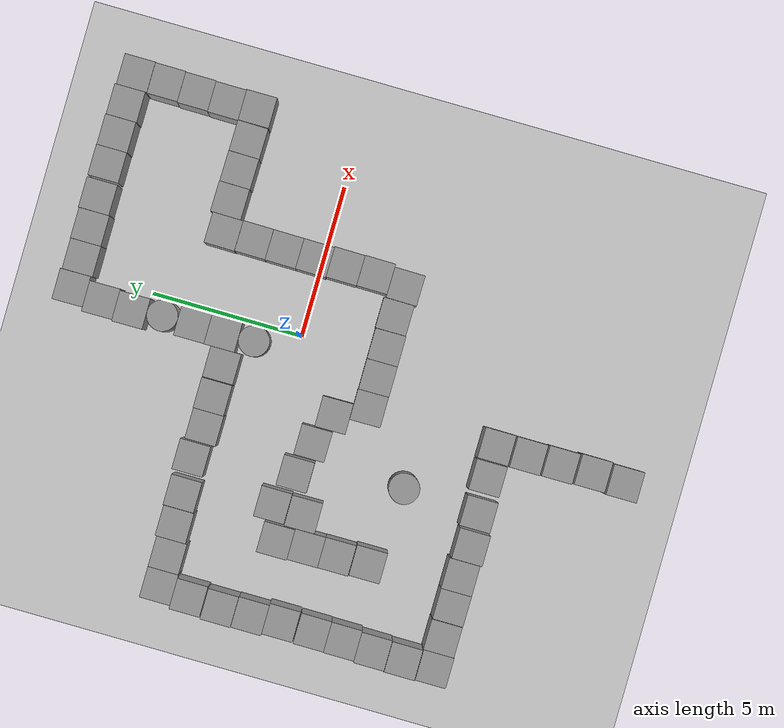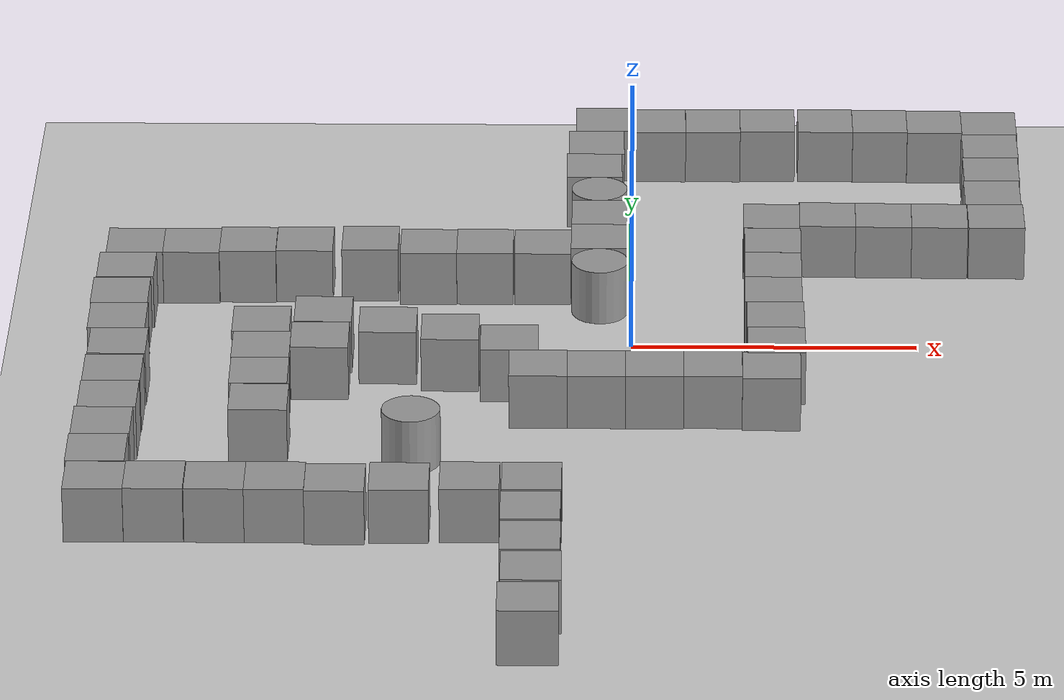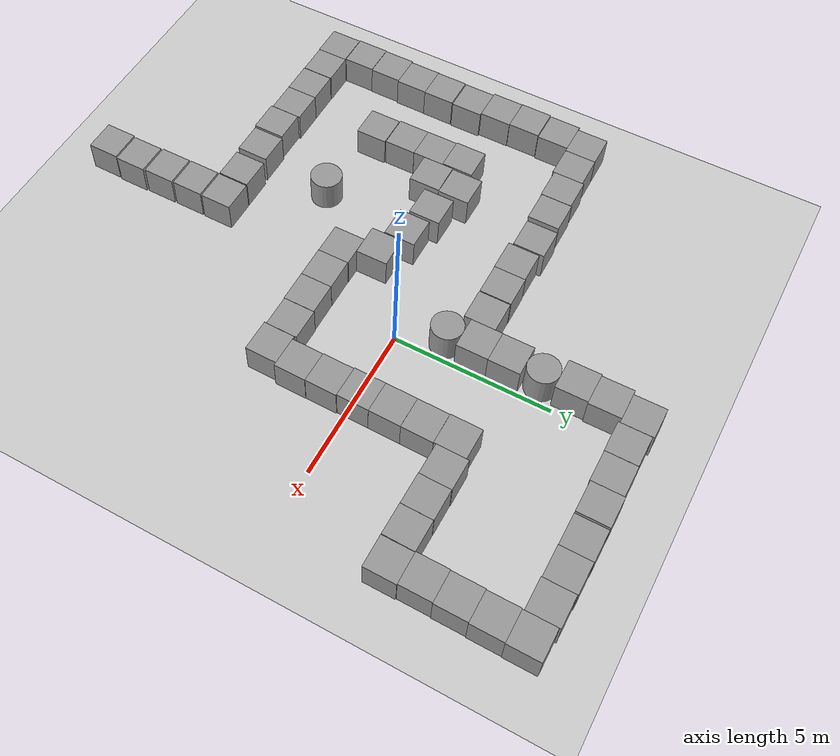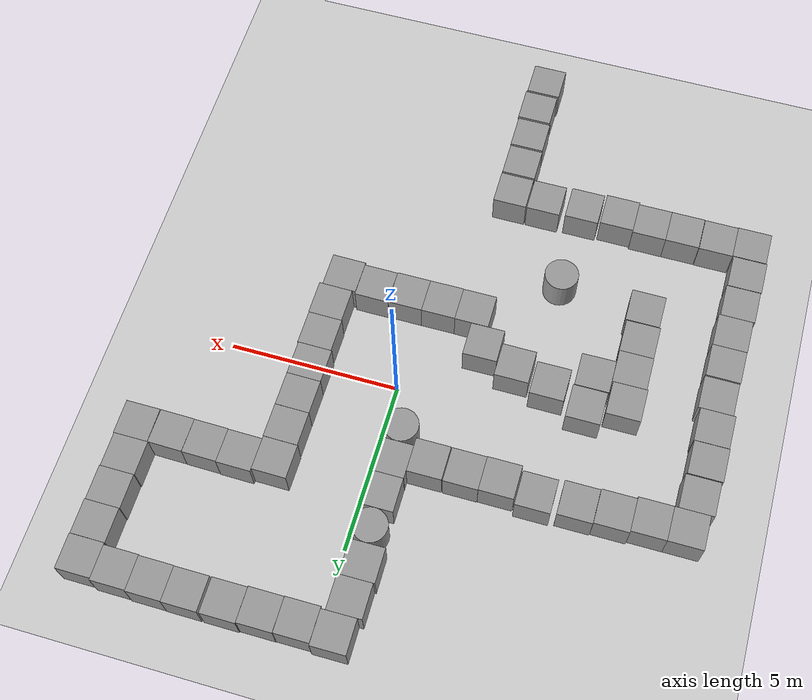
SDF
<sdf version="1.7">
 <world name="default">
  <light name="sun" type="directional">
   <pose>0 0 10 0 -0 0</pose>
   <diffuse>0.8 0.8 0.8 1</diffuse>
   <specular>0.2 0.2 0.2 1</specular>
   <attenuation>
    <range>1000</range>
    <constant>0.9</constant>
    <linear>0.01</linear>
    <quadratic>0.001</quadratic>
   </attenuation>
   <direction>-0.5 0.1 -0.9</direction>
   <spot><inner_angle>0</inner_angle><outer_angle>0</outer_angle><falloff>0</falloff></spot>
  </light>
  <model name="ground_plane">
   <static>1</static>
   <link name="link">
    <collision name="collision">
     <geometry><plane><normal>0 0 1</normal><size>100 100</size></plane></geometry>
     <surface>
      <contact><collide_bitmask>65535</collide_bitmask></contact>
      <friction><ode><mu>100</mu><mu2>50</mu2></ode></friction>
     </surface>
    </collision>
    <visual name="visual">
     <cast_shadows>0</cast_shadows>
     <geometry><plane><normal>0 0 1</normal><size>100 100</size></plane></geometry>
     <material>
      <script><uri>file://media/materials/scripts/gazebo.material</uri><name>Gazebo/Grey</name></script>
     </material>
    </visual>
   </link>
  </model>
  <gravity>0 0 -9.8</gravity>
  <magnetic_field>6e-06 2.3e-05 -4.2e-05</magnetic_field>
  <atmosphere type="adiabatic"/>
  <physics type="ode">
   <max_step_size>0.001</max_step_size>
   <real_time_factor>1</real_time_factor>
   <real_time_update_rate>1000</real_time_update_rate>
  </physics>
  <scene><ambient>0.4 0.4 0.4 1</ambient><background>0.7 0.7 0.7 1</background><shadows>1</shadows></scene>
  <spherical_coordinates>
   <surface_model>EARTH_WGS84</surface_model>
   <latitude_deg>0</latitude_deg>
   <longitude_deg>0</longitude_deg>
   <elevation>0</elevation>
   <heading_deg>0</heading_deg>
  </spherical_coordinates>
  <model name="unit_cylinder">
   <pose>-0.563126 1.39551 0.499997 -3e-06 -1e-06 -3.8e-05</pose>
   <link name="link">
    <inertial>
     <mass>1</mass>
     <inertia><ixx>0.145833</ixx><ixy>0</ixy><ixz>0</ixz><iyy>0.145833</iyy><iyz>0</iyz><izz>0.125</izz></inertia>
    </inertial>
    <collision name="collision">
     <geometry><cylinder><radius>0.5</radius><length>1</length></cylinder></geometry>
    </collision>
    <visual name="visual">
     <geometry><cylinder><radius>0.5</radius><length>1</length></cylinder></geometry>
     <material>
      <script><name>Gazebo/Grey</name><uri>file://media/materials/scripts/gazebo.material</uri></script>
     </material>
    </visual>
   </link>
  </model>
  <model name="unit_box">
   <pose>-2.11057 -1.67598 0.499995 1e-05 -0 0.009478</pose>
   <link name="link">
    <inertial>
     <mass>1</mass>
     <inertia>
      <ixx>0.166667</ixx>
      <ixy>0</ixy>
      <ixz>0</ixz>
      <iyy>0.166667</iyy>
      <iyz>0</iyz>
      <izz>0.166667</izz>
     </inertia>
    </inertial>
    <collision name="collision"><geometry><box><size>1 1 1</size></box></geometry></collision>
    <visual name="visual">
     <geometry><box><size>1 1 1</size></box></geometry>
     <material>
      <script><name>Gazebo/Grey</name><uri>file://media/materials/scripts/gazebo.material</uri></script>
     </material>
    </visual>
   </link>
  </model>
  <model name="unit_box_0">
   <pose>-1.60254 -2.67828 0.5 0 -0 0.004243</pose>
   <link name="link">
    <inertial>
     <mass>1</mass>
     <inertia>
      <ixx>0.166667</ixx>
      <ixy>0</ixy>
      <ixz>0</ixz>
      <iyy>0.166667</iyy>
      <iyz>0</iyz>
      <izz>0.166667</izz>
     </inertia>
    </inertial>
    <collision name="collision"><geometry><box><size>1 1 1</size></box></geometry></collision>
    <visual name="visual">
     <geometry><box><size>1 1 1</size></box></geometry>
     <material>
      <script><name>Gazebo/Grey</name><uri>file://media/materials/scripts/gazebo.material</uri></script>
     </material>
    </visual>
   </link>
  </model>
  <model name="unit_box_1">
   <pose>-0.602504 -2.68172 0.5 0 -0 0.004238</pose>
   <link name="link">
    <inertial>
     <mass>1</mass>
     <inertia>
      <ixx>0.166667</ixx>
      <ixy>0</ixy>
      <ixz>0</ixz>
      <iyy>0.166667</iyy>
      <iyz>0</iyz>
      <izz>0.166667</izz>
     </inertia>
    </inertial>
    <collision name="collision"><geometry><box><size>1 1 1</size></box></geometry></collision>
    <visual name="visual">
     <geometry><box><size>1 1 1</size></box></geometry>
     <material>
      <script><name>Gazebo/Grey</name><uri>file://media/materials/scripts/gazebo.material</uri></script>
     </material>
    </visual>
   </link>
  </model>
  <model name="unit_box_2">
   <pose>0.397892 -2.67889 0.499995 0 1e-05 0.003464</pose>
   <link name="link">
    <inertial>
     <mass>1</mass>
     <inertia>
      <ixx>0.166667</ixx>
      <ixy>0</ixy>
      <ixz>0</ixz>
      <iyy>0.166667</iyy>
      <iyz>0</iyz>
      <izz>0.166667</izz>
     </inertia>
    </inertial>
    <collision name="collision"><geometry><box><size>1 1 1</size></box></geometry></collision>
    <visual name="visual">
     <geometry><box><size>1 1 1</size></box></geometry>
     <material>
      <script><name>Gazebo/Grey</name><uri>file://media/materials/scripts/gazebo.material</uri></script>
     </material>
    </visual>
   </link>
  </model>
  <model name="unit_box_3">
   <pose>1.40093 -2.66196 0.499995 0 -1e-05 -0.002749</pose>
   <link name="link">
    <inertial>
     <mass>1</mass>
     <inertia>
      <ixx>0.166667</ixx>
      <ixy>0</ixy>
      <ixz>0</ixz>
      <iyy>0.166667</iyy>
      <iyz>0</iyz>
      <izz>0.166667</izz>
     </inertia>
    </inertial>
    <collision name="collision"><geometry><box><size>1 1 1</size></box></geometry></collision>
    <visual name="visual">
     <geometry><box><size>1 1 1</size></box></geometry>
     <material>
      <script><name>Gazebo/Grey</name><uri>file://media/materials/scripts/gazebo.material</uri></script>
     </material>
    </visual>
   </link>
  </model>
  <model name="unit_box_4">
   <pose>2.4034 -2.73301 0.499995 0 1e-05 -0.008846</pose>
   <link name="link">
    <inertial>
     <mass>1</mass>
     <inertia>
      <ixx>0.166667</ixx>
      <ixy>0</ixy>
      <ixz>0</ixz>
      <iyy>0.166667</iyy>
      <iyz>0</iyz>
      <izz>0.166667</izz>
     </inertia>
    </inertial>
    <collision name="collision"><geometry><box><size>1 1 1</size></box></geometry></collision>
    <visual name="visual">
     <geometry><box><size>1 1 1</size></box></geometry>
     <material>
      <script><name>Gazebo/Grey</name><uri>file://media/materials/scripts/gazebo.material</uri></script>
     </material>
    </visual>
   </link>
  </model>
  <model name="unit_box_5">
   <pose>2.50521 -1.73375 0.499995 -0 -1e-05 -0.009107</pose>
   <link name="link">
    <inertial>
     <mass>1</mass>
     <inertia>
      <ixx>0.166667</ixx>
      <ixy>0</ixy>
      <ixz>0</ixz>
      <iyy>0.166667</iyy>
      <iyz>0</iyz>
      <izz>0.166667</izz>
     </inertia>
    </inertial>
    <collision name="collision"><geometry><box><size>1 1 1</size></box></geometry></collision>
    <visual name="visual">
     <geometry><box><size>1 1 1</size></box></geometry>
     <material>
      <script><name>Gazebo/Grey</name><uri>file://media/materials/scripts/gazebo.material</uri></script>
     </material>
    </visual>
   </link>
  </model>
  <model name="unit_box_6">
   <pose>2.5019 -0.733593 0.499995 0 -1e-05 -0.009253</pose>
   <link name="link">
    <inertial>
     <mass>1</mass>
     <inertia>
      <ixx>0.166667</ixx>
      <ixy>0</ixy>
      <ixz>0</ixz>
      <iyy>0.166667</iyy>
      <iyz>0</iyz>
      <izz>0.166667</izz>
     </inertia>
    </inertial>
    <collision name="collision"><geometry><box><size>1 1 1</size></box></geometry></collision>
    <visual name="visual">
     <geometry><box><size>1 1 1</size></box></geometry>
     <material>
      <script><name>Gazebo/Grey</name><uri>file://media/materials/scripts/gazebo.material</uri></script>
     </material>
    </visual>
   </link>
  </model>
  <model name="unit_box_7">
   <pose>2.4839 0.266633 0.499995 1e-05 0 -0.009255</pose>
   <link name="link">
    <inertial>
     <mass>1</mass>
     <inertia>
      <ixx>0.166667</ixx>
      <ixy>0</ixy>
      <ixz>0</ixz>
      <iyy>0.166667</iyy>
      <iyz>0</iyz>
      <izz>0.166667</izz>
     </inertia>
    </inertial>
    <collision name="collision"><geometry><box><size>1 1 1</size></box></geometry></collision>
    <visual name="visual">
     <geometry><box><size>1 1 1</size></box></geometry>
     <material>
      <script><name>Gazebo/Grey</name><uri>file://media/materials/scripts/gazebo.material</uri></script>
     </material>
    </visual>
   </link>
  </model>
  <model name="unit_box_8">
   <pose>2.4918 1.26661 0.499995 1e-05 -0 -0.009264</pose>
   <link name="link">
    <inertial>
     <mass>1</mass>
     <inertia>
      <ixx>0.166667</ixx>
      <ixy>0</ixy>
      <ixz>0</ixz>
      <iyy>0.166667</iyy>
      <iyz>0</iyz>
      <izz>0.166667</izz>
     </inertia>
    </inertial>
    <collision name="collision"><geometry><box><size>1 1 1</size></box></geometry></collision>
    <visual name="visual">
     <geometry><box><size>1 1 1</size></box></geometry>
     <material>
      <script><name>Gazebo/Grey</name><uri>file://media/materials/scripts/gazebo.material</uri></script>
     </material>
    </visual>
   </link>
  </model>
  <model name="unit_box_9">
   <pose>2.50124 2.26709 0.499995 -1e-05 -0 -0.008381</pose>
   <link name="link">
    <inertial>
     <mass>1</mass>
     <inertia>
      <ixx>0.166667</ixx>
      <ixy>0</ixy>
      <ixz>0</ixz>
      <iyy>0.166667</iyy>
      <iyz>0</iyz>
      <izz>0.166667</izz>
     </inertia>
    </inertial>
    <collision name="collision"><geometry><box><size>1 1 1</size></box></geometry></collision>
    <visual name="visual">
     <geometry><box><size>1 1 1</size></box></geometry>
     <material>
      <script><name>Gazebo/Grey</name><uri>file://media/materials/scripts/gazebo.material</uri></script>
     </material>
    </visual>
   </link>
  </model>
  <model name="unit_box_10">
   <pose>2.49575 3.26828 0.499995 0 -1e-05 -0.010132</pose>
   <link name="link">
    <inertial>
     <mass>1</mass>
     <inertia>
      <ixx>0.166667</ixx>
      <ixy>0</ixy>
      <ixz>0</ixz>
      <iyy>0.166667</iyy>
      <iyz>0</iyz>
      <izz>0.166667</izz>
     </inertia>
    </inertial>
    <collision name="collision"><geometry><box><size>1 1 1</size></box></geometry></collision>
    <visual name="visual">
     <geometry><box><size>1 1 1</size></box></geometry>
     <material>
      <script><name>Gazebo/Grey</name><uri>file://media/materials/scripts/gazebo.material</uri></script>
     </material>
    </visual>
   </link>
  </model>
  <model name="unit_box_11">
   <pose>3.49656 3.34273 0.499995 0 -1e-05 -0.010141</pose>
   <link name="link">
    <inertial>
     <mass>1</mass>
     <inertia>
      <ixx>0.166667</ixx>
      <ixy>0</ixy>
      <ixz>0</ixz>
      <iyy>0.166667</iyy>
      <iyz>0</iyz>
      <izz>0.166667</izz>
     </inertia>
    </inertial>
    <collision name="collision"><geometry><box><size>1 1 1</size></box></geometry></collision>
    <visual name="visual">
     <geometry><box><size>1 1 1</size></box></geometry>
     <material>
      <script><name>Gazebo/Grey</name><uri>file://media/materials/scripts/gazebo.material</uri></script>
     </material>
    </visual>
   </link>
  </model>
  <model name="unit_box_12">
   <pose>4.49676 3.32169 0.499995 0 1e-05 -0.010857</pose>
   <link name="link">
    <inertial>
     <mass>1</mass>
     <inertia>
      <ixx>0.166667</ixx>
      <ixy>0</ixy>
      <ixz>0</ixz>
      <iyy>0.166667</iyy>
      <iyz>0</iyz>
      <izz>0.166667</izz>
     </inertia>
    </inertial>
    <collision name="collision"><geometry><box><size>1 1 1</size></box></geometry></collision>
    <visual name="visual">
     <geometry><box><size>1 1 1</size></box></geometry>
     <material>
      <script><name>Gazebo/Grey</name><uri>file://media/materials/scripts/gazebo.material</uri></script>
     </material>
    </visual>
   </link>
  </model>
  <model name="unit_box_13">
   <pose>5.49803 3.30494 0.499995 0 1e-05 -0.01365</pose>
   <link name="link">
    <inertial>
     <mass>1</mass>
     <inertia>
      <ixx>0.166667</ixx>
      <ixy>0</ixy>
      <ixz>0</ixz>
      <iyy>0.166667</iyy>
      <iyz>0</iyz>
      <izz>0.166667</izz>
     </inertia>
    </inertial>
    <collision name="collision"><geometry><box><size>1 1 1</size></box></geometry></collision>
    <visual name="visual">
     <geometry><box><size>1 1 1</size></box></geometry>
     <material>
      <script><name>Gazebo/Grey</name><uri>file://media/materials/scripts/gazebo.material</uri></script>
     </material>
    </visual>
   </link>
  </model>
  <model name="unit_box_14">
   <pose>6.50891 3.29743 0.499995 -1e-05 0 -0.001728</pose>
   <link name="link">
    <inertial>
     <mass>1</mass>
     <inertia>
      <ixx>0.166667</ixx>
      <ixy>0</ixy>
      <ixz>0</ixz>
      <iyy>0.166667</iyy>
      <iyz>0</iyz>
      <izz>0.166667</izz>
     </inertia>
    </inertial>
    <collision name="collision"><geometry><box><size>1 1 1</size></box></geometry></collision>
    <visual name="visual">
     <geometry><box><size>1 1 1</size></box></geometry>
     <material>
      <script><name>Gazebo/Grey</name><uri>file://media/materials/scripts/gazebo.material</uri></script>
     </material>
    </visual>
   </link>
  </model>
  <model name="unit_box_15">
   <pose>6.48522 4.29749 0.499995 0 -1e-05 -0.001712</pose>
   <link name="link">
    <inertial>
     <mass>1</mass>
     <inertia>
      <ixx>0.166667</ixx>
      <ixy>0</ixy>
      <ixz>0</ixz>
      <iyy>0.166667</iyy>
      <iyz>0</iyz>
      <izz>0.166667</izz>
     </inertia>
    </inertial>
    <collision name="collision"><geometry><box><size>1 1 1</size></box></geometry></collision>
    <visual name="visual">
     <geometry><box><size>1 1 1</size></box></geometry>
     <material>
      <script><name>Gazebo/Grey</name><uri>file://media/materials/scripts/gazebo.material</uri></script>
     </material>
    </visual>
   </link>
  </model>
  <model name="unit_box_16">
   <pose>6.50503 5.29749 0.499995 -0 1e-05 -0.001701</pose>
   <link name="link">
    <inertial>
     <mass>1</mass>
     <inertia>
      <ixx>0.166667</ixx>
      <ixy>0</ixy>
      <ixz>0</ixz>
      <iyy>0.166667</iyy>
      <iyz>0</iyz>
      <izz>0.166667</izz>
     </inertia>
    </inertial>
    <collision name="collision"><geometry><box><size>1 1 1</size></box></geometry></collision>
    <visual name="visual">
     <geometry><box><size>1 1 1</size></box></geometry>
     <material>
      <script><name>Gazebo/Grey</name><uri>file://media/materials/scripts/gazebo.material</uri></script>
     </material>
    </visual>
   </link>
  </model>
  <model name="unit_box_17">
   <pose>6.52604 6.2976 0.499995 -0 1e-05 -0.001423</pose>
   <link name="link">
    <inertial>
     <mass>1</mass>
     <inertia>
      <ixx>0.166667</ixx>
      <ixy>0</ixy>
      <ixz>0</ixz>
      <iyy>0.166667</iyy>
      <iyz>0</iyz>
      <izz>0.166667</izz>
     </inertia>
    </inertial>
    <collision name="collision"><geometry><box><size>1 1 1</size></box></geometry></collision>
    <visual name="visual">
     <geometry><box><size>1 1 1</size></box></geometry>
     <material>
      <script><name>Gazebo/Grey</name><uri>file://media/materials/scripts/gazebo.material</uri></script>
     </material>
    </visual>
   </link>
  </model>
  <model name="unit_box_18">
   <pose>6.54296 7.29903 0.499995 0 -1e-05 -0.000918</pose>
   <link name="link">
    <inertial>
     <mass>1</mass>
     <inertia>
      <ixx>0.166667</ixx>
      <ixy>0</ixy>
      <ixz>0</ixz>
      <iyy>0.166667</iyy>
      <iyz>0</iyz>
      <izz>0.166667</izz>
     </inertia>
    </inertial>
    <collision name="collision"><geometry><box><size>1 1 1</size></box></geometry></collision>
    <visual name="visual">
     <geometry><box><size>1 1 1</size></box></geometry>
     <material>
      <script><name>Gazebo/Grey</name><uri>file://media/materials/scripts/gazebo.material</uri></script>
     </material>
    </visual>
   </link>
  </model>
  <model name="unit_box_19">
   <pose>5.54296 7.34867 0.499995 1e-05 0 -0.001009</pose>
   <link name="link">
    <inertial>
     <mass>1</mass>
     <inertia>
      <ixx>0.166667</ixx>
      <ixy>0</ixy>
      <ixz>0</ixz>
      <iyy>0.166667</iyy>
      <iyz>0</iyz>
      <izz>0.166667</izz>
     </inertia>
    </inertial>
    <collision name="collision"><geometry><box><size>1 1 1</size></box></geometry></collision>
    <visual name="visual">
     <geometry><box><size>1 1 1</size></box></geometry>
     <material>
      <script><name>Gazebo/Grey</name><uri>file://media/materials/scripts/gazebo.material</uri></script>
     </material>
    </visual>
   </link>
  </model>
  <model name="unit_box_20">
   <pose>4.54292 7.36978 0.499995 1e-05 -0 -0.00101</pose>
   <link name="link">
    <inertial>
     <mass>1</mass>
     <inertia>
      <ixx>0.166667</ixx>
      <ixy>0</ixy>
      <ixz>0</ixz>
      <iyy>0.166667</iyy>
      <iyz>0</iyz>
      <izz>0.166667</izz>
     </inertia>
    </inertial>
    <collision name="collision"><geometry><box><size>1 1 1</size></box></geometry></collision>
    <visual name="visual">
     <geometry><box><size>1 1 1</size></box></geometry>
     <material>
      <script><name>Gazebo/Grey</name><uri>file://media/materials/scripts/gazebo.material</uri></script>
     </material>
    </visual>
   </link>
  </model>
  <model name="unit_box_21">
   <pose>3.54289 7.38019 0.499995 0 -1e-05 -0.001076</pose>
   <link name="link">
    <inertial>
     <mass>1</mass>
     <inertia>
      <ixx>0.166667</ixx>
      <ixy>0</ixy>
      <ixz>0</ixz>
      <iyy>0.166667</iyy>
      <iyz>0</iyz>
      <izz>0.166667</izz>
     </inertia>
    </inertial>
    <collision name="collision"><geometry><box><size>1 1 1</size></box></geometry></collision>
    <visual name="visual">
     <geometry><box><size>1 1 1</size></box></geometry>
     <material>
      <script><name>Gazebo/Grey</name><uri>file://media/materials/scripts/gazebo.material</uri></script>
     </material>
    </visual>
   </link>
  </model>
  <model name="unit_box_22">
   <pose>2.48113 7.38405 0.499995 0 1e-05 0</pose>
   <link name="link">
    <inertial>
     <mass>1</mass>
     <inertia>
      <ixx>0.166667</ixx>
      <ixy>0</ixy>
      <ixz>0</ixz>
      <iyy>0.166667</iyy>
      <iyz>0</iyz>
      <izz>0.166667</izz>
     </inertia>
    </inertial>
    <collision name="collision"><geometry><box><size>1 1 1</size></box></geometry></collision>
    <visual name="visual">
     <geometry><box><size>1 1 1</size></box></geometry>
     <material>
      <script><name>Gazebo/Grey</name><uri>file://media/materials/scripts/gazebo.material</uri></script>
     </material>
    </visual>
   </link>
  </model>
  <model name="unit_box_23">
   <pose>1.48044 7.35733 0.499995 1e-05 -0 0.000102</pose>
   <link name="link">
    <inertial>
     <mass>1</mass>
     <inertia>
      <ixx>0.166667</ixx>
      <ixy>0</ixy>
      <ixz>0</ixz>
      <iyy>0.166667</iyy>
      <iyz>0</iyz>
      <izz>0.166667</izz>
     </inertia>
    </inertial>
    <collision name="collision"><geometry><box><size>1 1 1</size></box></geometry></collision>
    <visual name="visual">
     <geometry><box><size>1 1 1</size></box></geometry>
     <material>
      <script><name>Gazebo/Grey</name><uri>file://media/materials/scripts/gazebo.material</uri></script>
     </material>
    </visual>
   </link>
  </model>
  <model name="unit_box_24">
   <pose>0.479053 7.34657 0.499995 -0 -1e-05 0.002913</pose>
   <link name="link">
    <inertial>
     <mass>1</mass>
     <inertia>
      <ixx>0.166667</ixx>
      <ixy>0</ixy>
      <ixz>0</ixz>
      <iyy>0.166667</iyy>
      <iyz>0</iyz>
      <izz>0.166667</izz>
     </inertia>
    </inertial>
    <collision name="collision"><geometry><box><size>1 1 1</size></box></geometry></collision>
    <visual name="visual">
     <geometry><box><size>1 1 1</size></box></geometry>
     <material>
      <script><name>Gazebo/Grey</name><uri>file://media/materials/scripts/gazebo.material</uri></script>
     </material>
    </visual>
   </link>
  </model>
  <model name="unit_box_25">
   <pose>-0.523086 7.39707 0.499995 0 -1e-05 0.006561</pose>
   <link name="link">
    <inertial>
     <mass>1</mass>
     <inertia>
      <ixx>0.166667</ixx>
      <ixy>0</ixy>
      <ixz>0</ixz>
      <iyy>0.166667</iyy>
      <iyz>0</iyz>
      <izz>0.166667</izz>
     </inertia>
    </inertial>
    <collision name="collision"><geometry><box><size>1 1 1</size></box></geometry></collision>
    <visual name="visual">
     <geometry><box><size>1 1 1</size></box></geometry>
     <material>
      <script><name>Gazebo/Grey</name><uri>file://media/materials/scripts/gazebo.material</uri></script>
     </material>
    </visual>
   </link>
  </model>
  <model name="unit_box_26">
   <pose>-0.645397 6.39598 0.499995 1e-05 -0 0.006646</pose>
   <link name="link">
    <inertial>
     <mass>1</mass>
     <inertia>
      <ixx>0.166667</ixx>
      <ixy>0</ixy>
      <ixz>0</ixz>
      <iyy>0.166667</iyy>
      <iyz>0</iyz>
      <izz>0.166667</izz>
     </inertia>
    </inertial>
    <collision name="collision"><geometry><box><size>1 1 1</size></box></geometry></collision>
    <visual name="visual">
     <geometry><box><size>1 1 1</size></box></geometry>
     <material>
      <script><name>Gazebo/Grey</name><uri>file://media/materials/scripts/gazebo.material</uri></script>
     </material>
    </visual>
   </link>
  </model>
  <model name="unit_box_27">
   <pose>-0.57881 2.39585 0.5 0 -0 0.002203</pose>
   <link name="link">
    <inertial>
     <mass>1</mass>
     <inertia>
      <ixx>0.166667</ixx>
      <ixy>0</ixy>
      <ixz>0</ixz>
      <iyy>0.166667</iyy>
      <iyz>0</iyz>
      <izz>0.166667</izz>
     </inertia>
    </inertial>
    <collision name="collision"><geometry><box><size>1 1 1</size></box></geometry></collision>
    <visual name="visual">
     <geometry><box><size>1 1 1</size></box></geometry>
     <material>
      <script><name>Gazebo/Grey</name><uri>file://media/materials/scripts/gazebo.material</uri></script>
     </material>
    </visual>
   </link>
  </model>
  <model name="unit_box_28">
   <pose>-0.57553 3.39587 0.5 0 -0 0.002183</pose>
   <link name="link">
    <inertial>
     <mass>1</mass>
     <inertia>
      <ixx>0.166667</ixx>
      <ixy>0</ixy>
      <ixz>0</ixz>
      <iyy>0.166667</iyy>
      <iyz>0</iyz>
      <izz>0.166667</izz>
     </inertia>
    </inertial>
    <collision name="collision"><geometry><box><size>1 1 1</size></box></geometry></collision>
    <visual name="visual">
     <geometry><box><size>1 1 1</size></box></geometry>
     <material>
      <script><name>Gazebo/Grey</name><uri>file://media/materials/scripts/gazebo.material</uri></script>
     </material>
    </visual>
   </link>
  </model>
  <model name="unit_box_29">
   <pose>-0.681806 5.39572 0.499995 1e-05 -0 0.006646</pose>
   <link name="link">
    <inertial>
     <mass>1</mass>
     <inertia>
      <ixx>0.166667</ixx>
      <ixy>0</ixy>
      <ixz>0</ixz>
      <iyy>0.166667</iyy>
      <iyz>0</iyz>
      <izz>0.166667</izz>
     </inertia>
    </inertial>
    <collision name="collision"><geometry><box><size>1 1 1</size></box></geometry></collision>
    <visual name="visual">
     <geometry><box><size>1 1 1</size></box></geometry>
     <material>
      <script><name>Gazebo/Grey</name><uri>file://media/materials/scripts/gazebo.material</uri></script>
     </material>
    </visual>
   </link>
  </model>
  <model name="unit_cylinder_0">
   <pose>-0.585343 4.39615 0.499996 3e-06 1e-06 -0.004958</pose>
   <link name="link">
    <inertial>
     <mass>1</mass>
     <inertia><ixx>0.145833</ixx><ixy>0</ixy><ixz>0</ixz><iyy>0.145833</iyy><iyz>0</iyz><izz>0.125</izz></inertia>
    </inertial>
    <collision name="collision">
     <geometry><cylinder><radius>0.5</radius><length>1</length></cylinder></geometry>
    </collision>
    <visual name="visual">
     <geometry><cylinder><radius>0.5</radius><length>1</length></cylinder></geometry>
     <material>
      <script><name>Gazebo/Grey</name><uri>file://media/materials/scripts/gazebo.material</uri></script>
     </material>
    </visual>
   </link>
  </model>
  <model name="unit_box_30">
   <pose>-1.57836 2.16223 0.499995 0 -1e-05 0.002108</pose>
   <link name="link">
    <inertial>
     <mass>1</mass>
     <inertia>
      <ixx>0.166667</ixx>
      <ixy>0</ixy>
      <ixz>0</ixz>
      <iyy>0.166667</iyy>
      <iyz>0</iyz>
      <izz>0.166667</izz>
     </inertia>
    </inertial>
    <collision name="collision"><geometry><box><size>1 1 1</size></box></geometry></collision>
    <visual name="visual">
     <geometry><box><size>1 1 1</size></box></geometry>
     <material>
      <script><name>Gazebo/Grey</name><uri>file://media/materials/scripts/gazebo.material</uri></script>
     </material>
    </visual>
   </link>
  </model>
  <model name="unit_box_31">
   <pose>-2.60207 2.16756 0.499995 0 -1e-05 9.7e-05</pose>
   <link name="link">
    <inertial>
     <mass>1</mass>
     <inertia>
      <ixx>0.166667</ixx>
      <ixy>0</ixy>
      <ixz>0</ixz>
      <iyy>0.166667</iyy>
      <iyz>0</iyz>
      <izz>0.166667</izz>
     </inertia>
    </inertial>
    <collision name="collision"><geometry><box><size>1 1 1</size></box></geometry></collision>
    <visual name="visual">
     <geometry><box><size>1 1 1</size></box></geometry>
     <material>
      <script><name>Gazebo/Grey</name><uri>file://media/materials/scripts/gazebo.material</uri></script>
     </material>
    </visual>
   </link>
  </model>
  <model name="unit_box_32">
   <pose>-3.60207 2.15582 0.499995 0 -1e-05 0.0001</pose>
   <link name="link">
    <inertial>
     <mass>1</mass>
     <inertia>
      <ixx>0.166667</ixx>
      <ixy>0</ixy>
      <ixz>0</ixz>
      <iyy>0.166667</iyy>
      <iyz>0</iyz>
      <izz>0.166667</izz>
     </inertia>
    </inertial>
    <collision name="collision"><geometry><box><size>1 1 1</size></box></geometry></collision>
    <visual name="visual">
     <geometry><box><size>1 1 1</size></box></geometry>
     <material>
      <script><name>Gazebo/Grey</name><uri>file://media/materials/scripts/gazebo.material</uri></script>
     </material>
    </visual>
   </link>
  </model>
  <model name="unit_box_33">
   <pose>-3.1419 -1.28011 0.499995 0 1e-05 0</pose>
   <link name="link">
    <inertial>
     <mass>1</mass>
     <inertia>
      <ixx>0.166667</ixx>
      <ixy>0</ixy>
      <ixz>0</ixz>
      <iyy>0.166667</iyy>
      <iyz>0</iyz>
      <izz>0.166667</izz>
     </inertia>
    </inertial>
    <collision name="collision"><geometry><box><size>1 1 1</size></box></geometry></collision>
    <visual name="visual">
     <geometry><box><size>1 1 1</size></box></geometry>
     <material>
      <script><name>Gazebo/Grey</name><uri>file://media/materials/scripts/gazebo.material</uri></script>
     </material>
    </visual>
   </link>
  </model>
  <model name="unit_box_34">
   <pose>-4.22854 -1.00981 0.499995 -1e-05 -0 -0</pose>
   <link name="link">
    <inertial>
     <mass>1</mass>
     <inertia>
      <ixx>0.166667</ixx>
      <ixy>0</ixy>
      <ixz>0</ixz>
      <iyy>0.166667</iyy>
      <iyz>0</iyz>
      <izz>0.166667</izz>
     </inertia>
    </inertial>
    <collision name="collision"><geometry><box><size>1 1 1</size></box></geometry></collision>
    <visual name="visual">
     <geometry><box><size>1 1 1</size></box></geometry>
     <material>
      <script><name>Gazebo/Grey</name><uri>file://media/materials/scripts/gazebo.material</uri></script>
     </material>
    </visual>
   </link>
  </model>
  <model name="unit_box_35">
   <pose>-4.64213 2.28658 0.499995 0 1e-05 0</pose>
   <link name="link">
    <inertial>
     <mass>1</mass>
     <inertia>
      <ixx>0.166667</ixx>
      <ixy>0</ixy>
      <ixz>0</ixz>
      <iyy>0.166667</iyy>
      <iyz>0</iyz>
      <izz>0.166667</izz>
     </inertia>
    </inertial>
    <collision name="collision"><geometry><box><size>1 1 1</size></box></geometry></collision>
    <visual name="visual">
     <geometry><box><size>1 1 1</size></box></geometry>
     <material>
      <script><name>Gazebo/Grey</name><uri>file://media/materials/scripts/gazebo.material</uri></script>
     </material>
    </visual>
   </link>
  </model>
  <model name="unit_box_36">
   <pose>-5.36497 -0.594538 0.499995 -1e-05 -0 -0</pose>
   <link name="link">
    <inertial>
     <mass>1</mass>
     <inertia>
      <ixx>0.166667</ixx>
      <ixy>0</ixy>
      <ixz>0</ixz>
      <iyy>0.166667</iyy>
      <iyz>0</iyz>
      <izz>0.166667</izz>
     </inertia>
    </inertial>
    <collision name="collision"><geometry><box><size>1 1 1</size></box></geometry></collision>
    <visual name="visual">
     <geometry><box><size>1 1 1</size></box></geometry>
     <material>
      <script><name>Gazebo/Grey</name><uri>file://media/materials/scripts/gazebo.material</uri></script>
     </material>
    </visual>
   </link>
  </model>
  <model name="unit_box_37">
   <pose>-5.80311 2.24133 0.499995 0 1e-05 0</pose>
   <link name="link">
    <inertial>
     <mass>1</mass>
     <inertia>
      <ixx>0.166667</ixx>
      <ixy>0</ixy>
      <ixz>0</ixz>
      <iyy>0.166667</iyy>
      <iyz>0</iyz>
      <izz>0.166667</izz>
     </inertia>
    </inertial>
    <collision name="collision"><geometry><box><size>1 1 1</size></box></geometry></collision>
    <visual name="visual">
     <geometry><box><size>1 1 1</size></box></geometry>
     <material>
      <script><name>Gazebo/Grey</name><uri>file://media/materials/scripts/gazebo.material</uri></script>
     </material>
    </visual>
   </link>
  </model>
  <model name="unit_box_38">
   <pose>-6.42669 -0.989561 0.499995 0 1e-05 0.003094</pose>
   <link name="link">
    <inertial>
     <mass>1</mass>
     <inertia>
      <ixx>0.166667</ixx>
      <ixy>0</ixy>
      <ixz>0</ixz>
      <iyy>0.166667</iyy>
      <iyz>0</iyz>
      <izz>0.166667</izz>
     </inertia>
    </inertial>
    <collision name="collision"><geometry><box><size>1 1 1</size></box></geometry></collision>
    <visual name="visual">
     <geometry><box><size>1 1 1</size></box></geometry>
     <material>
      <script><name>Gazebo/Grey</name><uri>file://media/materials/scripts/gazebo.material</uri></script>
     </material>
    </visual>
   </link>
  </model>
  <model name="unit_box_39">
   <pose>-6.39037 -1.98954 0.5 0 -0 0.003245</pose>
   <link name="link">
    <inertial>
     <mass>1</mass>
     <inertia>
      <ixx>0.166667</ixx>
      <ixy>0</ixy>
      <ixz>0</ixz>
      <iyy>0.166667</iyy>
      <iyz>0</iyz>
      <izz>0.166667</izz>
     </inertia>
    </inertial>
    <collision name="collision"><geometry><box><size>1 1 1</size></box></geometry></collision>
    <visual name="visual">
     <geometry><box><size>1 1 1</size></box></geometry>
     <material>
      <script><name>Gazebo/Grey</name><uri>file://media/materials/scripts/gazebo.material</uri></script>
     </material>
    </visual>
   </link>
  </model>
  <model name="unit_box_40">
   <pose>-6.8085 2.21422 0.499995 1e-05 0 0.0005</pose>
   <link name="link">
    <inertial>
     <mass>1</mass>
     <inertia>
      <ixx>0.166667</ixx>
      <ixy>0</ixy>
      <ixz>0</ixz>
      <iyy>0.166667</iyy>
      <iyz>0</iyz>
      <izz>0.166667</izz>
     </inertia>
    </inertial>
    <collision name="collision"><geometry><box><size>1 1 1</size></box></geometry></collision>
    <visual name="visual">
     <geometry><box><size>1 1 1</size></box></geometry>
     <material>
      <script><name>Gazebo/Grey</name><uri>file://media/materials/scripts/gazebo.material</uri></script>
     </material>
    </visual>
   </link>
  </model>
  <model name="unit_box_41">
   <pose>-7.80852 2.15923 0.499995 -1e-05 -0 0.000407</pose>
   <link name="link">
    <inertial>
     <mass>1</mass>
     <inertia>
      <ixx>0.166667</ixx>
      <ixy>0</ixy>
      <ixz>0</ixz>
      <iyy>0.166667</iyy>
      <iyz>0</iyz>
      <izz>0.166667</izz>
     </inertia>
    </inertial>
    <collision name="collision"><geometry><box><size>1 1 1</size></box></geometry></collision>
    <visual name="visual">
     <geometry><box><size>1 1 1</size></box></geometry>
     <material>
      <script><name>Gazebo/Grey</name><uri>file://media/materials/scripts/gazebo.material</uri></script>
     </material>
    </visual>
   </link>
  </model>
  <model name="unit_box_42">
   <pose>-8.80861 2.15707 0.499995 0 -1e-05 0.000258</pose>
   <link name="link">
    <inertial>
     <mass>1</mass>
     <inertia>
      <ixx>0.166667</ixx>
      <ixy>0</ixy>
      <ixz>0</ixz>
      <iyy>0.166667</iyy>
      <iyz>0</iyz>
      <izz>0.166667</izz>
     </inertia>
    </inertial>
    <collision name="collision"><geometry><box><size>1 1 1</size></box></geometry></collision>
    <visual name="visual">
     <geometry><box><size>1 1 1</size></box></geometry>
     <material>
      <script><name>Gazebo/Grey</name><uri>file://media/materials/scripts/gazebo.material</uri></script>
     </material>
    </visual>
   </link>
  </model>
  <model name="unit_box_43">
   <pose>-8.91256 1.157 0.499995 -0 -1e-05 0.000159</pose>
   <link name="link">
    <inertial>
     <mass>1</mass>
     <inertia>
      <ixx>0.166667</ixx>
      <ixy>0</ixy>
      <ixz>0</ixz>
      <iyy>0.166667</iyy>
      <iyz>0</iyz>
      <izz>0.166667</izz>
     </inertia>
    </inertial>
    <collision name="collision"><geometry><box><size>1 1 1</size></box></geometry></collision>
    <visual name="visual">
     <geometry><box><size>1 1 1</size></box></geometry>
     <material>
      <script><name>Gazebo/Grey</name><uri>file://media/materials/scripts/gazebo.material</uri></script>
     </material>
    </visual>
   </link>
  </model>
  <model name="unit_box_44">
   <pose>-8.95167 0.133295 0.499995 -1e-05 -0 -0</pose>
   <link name="link">
    <inertial>
     <mass>1</mass>
     <inertia>
      <ixx>0.166667</ixx>
      <ixy>0</ixy>
      <ixz>0</ixz>
      <iyy>0.166667</iyy>
      <iyz>0</iyz>
      <izz>0.166667</izz>
     </inertia>
    </inertial>
    <collision name="collision"><geometry><box><size>1 1 1</size></box></geometry></collision>
    <visual name="visual">
     <geometry><box><size>1 1 1</size></box></geometry>
     <material>
      <script><name>Gazebo/Grey</name><uri>file://media/materials/scripts/gazebo.material</uri></script>
     </material>
    </visual>
   </link>
  </model>
  <model name="unit_box_45">
   <pose>-8.93594 -0.870444 0.499995 1e-05 0 2e-05</pose>
   <link name="link">
    <inertial>
     <mass>1</mass>
     <inertia>
      <ixx>0.166667</ixx>
      <ixy>0</ixy>
      <ixz>0</ixz>
      <iyy>0.166667</iyy>
      <iyz>0</iyz>
      <izz>0.166667</izz>
     </inertia>
    </inertial>
    <collision name="collision"><geometry><box><size>1 1 1</size></box></geometry></collision>
    <visual name="visual">
     <geometry><box><size>1 1 1</size></box></geometry>
     <material>
      <script><name>Gazebo/Grey</name><uri>file://media/materials/scripts/gazebo.material</uri></script>
     </material>
    </visual>
   </link>
  </model>
  <model name="unit_box_46">
   <pose>-5.39093 -1.60905 0.499995 -1e-05 -0 0.008506</pose>
   <link name="link">
    <inertial>
     <mass>1</mass>
     <inertia>
      <ixx>0.166667</ixx>
      <ixy>0</ixy>
      <ixz>0</ixz>
      <iyy>0.166667</iyy>
      <iyz>0</iyz>
      <izz>0.166667</izz>
     </inertia>
    </inertial>
    <collision name="collision"><geometry><box><size>1 1 1</size></box></geometry></collision>
    <visual name="visual">
     <geometry><box><size>1 1 1</size></box></geometry>
     <material>
      <script><name>Gazebo/Grey</name><uri>file://media/materials/scripts/gazebo.material</uri></script>
     </material>
    </visual>
   </link>
  </model>
  <model name="unit_box_47">
   <pose>-8.8691 -1.87044 0.499995 -1e-05 0 4.1e-05</pose>
   <link name="link">
    <inertial>
     <mass>1</mass>
     <inertia>
      <ixx>0.166667</ixx>
      <ixy>0</ixy>
      <ixz>0</ixz>
      <iyy>0.166667</iyy>
      <iyz>0</iyz>
      <izz>0.166667</izz>
     </inertia>
    </inertial>
    <collision name="collision"><geometry><box><size>1 1 1</size></box></geometry></collision>
    <visual name="visual">
     <geometry><box><size>1 1 1</size></box></geometry>
     <material>
      <script><name>Gazebo/Grey</name><uri>file://media/materials/scripts/gazebo.material</uri></script>
     </material>
    </visual>
   </link>
  </model>
  <model name="unit_box_48">
   <pose>-8.88936 -2.90392 0.499995 0 1e-05 -0.000581</pose>
   <link name="link">
    <inertial>
     <mass>1</mass>
     <inertia>
      <ixx>0.166667</ixx>
      <ixy>0</ixy>
      <ixz>0</ixz>
      <iyy>0.166667</iyy>
      <iyz>0</iyz>
      <izz>0.166667</izz>
     </inertia>
    </inertial>
    <collision name="collision"><geometry><box><size>1 1 1</size></box></geometry></collision>
    <visual name="visual">
     <geometry><box><size>1 1 1</size></box></geometry>
     <material>
      <script><name>Gazebo/Grey</name><uri>file://media/materials/scripts/gazebo.material</uri></script>
     </material>
    </visual>
   </link>
  </model>
  <model name="unit_box_49">
   <pose>-6.3781 -2.98951 0.5 0 -0 0.003236</pose>
   <link name="link">
    <inertial>
     <mass>1</mass>
     <inertia>
      <ixx>0.166667</ixx>
      <ixy>0</ixy>
      <ixz>0</ixz>
      <iyy>0.166667</iyy>
      <iyz>0</iyz>
      <izz>0.166667</izz>
     </inertia>
    </inertial>
    <collision name="collision"><geometry><box><size>1 1 1</size></box></geometry></collision>
    <visual name="visual">
     <geometry><box><size>1 1 1</size></box></geometry>
     <material>
      <script><name>Gazebo/Grey</name><uri>file://media/materials/scripts/gazebo.material</uri></script>
     </material>
    </visual>
   </link>
  </model>
  <model name="unit_box_50">
   <pose>-8.90145 -3.90392 0.499995 0 1e-05 -0.000577</pose>
   <link name="link">
    <inertial>
     <mass>1</mass>
     <inertia>
      <ixx>0.166667</ixx>
      <ixy>0</ixy>
      <ixz>0</ixz>
      <iyy>0.166667</iyy>
      <iyz>0</iyz>
      <izz>0.166667</izz>
     </inertia>
    </inertial>
    <collision name="collision"><geometry><box><size>1 1 1</size></box></geometry></collision>
    <visual name="visual">
     <geometry><box><size>1 1 1</size></box></geometry>
     <material>
      <script><name>Gazebo/Grey</name><uri>file://media/materials/scripts/gazebo.material</uri></script>
     </material>
    </visual>
   </link>
  </model>
  <model name="unit_box_51">
   <pose>-6.33838 -4.00569 0.499995 0 1e-05 0</pose>
   <link name="link">
    <inertial>
     <mass>1</mass>
     <inertia>
      <ixx>0.166667</ixx>
      <ixy>0</ixy>
      <ixz>0</ixz>
      <iyy>0.166667</iyy>
      <iyz>0</iyz>
      <izz>0.166667</izz>
     </inertia>
    </inertial>
    <collision name="collision"><geometry><box><size>1 1 1</size></box></geometry></collision>
    <visual name="visual">
     <geometry><box><size>1 1 1</size></box></geometry>
     <material>
      <script><name>Gazebo/Grey</name><uri>file://media/materials/scripts/gazebo.material</uri></script>
     </material>
    </visual>
   </link>
  </model>
  <model name="unit_box_52">
   <pose>-8.94498 -4.90391 0.499995 0 1e-05 -0.000591</pose>
   <link name="link">
    <inertial>
     <mass>1</mass>
     <inertia>
      <ixx>0.166667</ixx>
      <ixy>0</ixy>
      <ixz>0</ixz>
      <iyy>0.166667</iyy>
      <iyz>0</iyz>
      <izz>0.166667</izz>
     </inertia>
    </inertial>
    <collision name="collision"><geometry><box><size>1 1 1</size></box></geometry></collision>
    <visual name="visual">
     <geometry><box><size>1 1 1</size></box></geometry>
     <material>
      <script><name>Gazebo/Grey</name><uri>file://media/materials/scripts/gazebo.material</uri></script>
     </material>
    </visual>
   </link>
  </model>
  <model name="unit_box_53">
   <pose>-8.96486 -5.91228 0.499995 0 1e-05 0</pose>
   <link name="link">
    <inertial>
     <mass>1</mass>
     <inertia>
      <ixx>0.166667</ixx>
      <ixy>0</ixy>
      <ixz>0</ixz>
      <iyy>0.166667</iyy>
      <iyz>0</iyz>
      <izz>0.166667</izz>
     </inertia>
    </inertial>
    <collision name="collision"><geometry><box><size>1 1 1</size></box></geometry></collision>
    <visual name="visual">
     <geometry><box><size>1 1 1</size></box></geometry>
     <material>
      <script><name>Gazebo/Grey</name><uri>file://media/materials/scripts/gazebo.material</uri></script>
     </material>
    </visual>
   </link>
  </model>
  <model name="unit_box_54">
   <pose>-8.93817 -6.9261 0.5 0 -0 0.000103</pose>
   <link name="link">
    <inertial>
     <mass>1</mass>
     <inertia>
      <ixx>0.166667</ixx>
      <ixy>0</ixy>
      <ixz>0</ixz>
      <iyy>0.166667</iyy>
      <iyz>0</iyz>
      <izz>0.166667</izz>
     </inertia>
    </inertial>
    <collision name="collision"><geometry><box><size>1 1 1</size></box></geometry></collision>
    <visual name="visual">
     <geometry><box><size>1 1 1</size></box></geometry>
     <material>
      <script><name>Gazebo/Grey</name><uri>file://media/materials/scripts/gazebo.material</uri></script>
     </material>
    </visual>
   </link>
  </model>
  <model name="unit_box_55">
   <pose>-7.93817 -6.91036 0.499995 1e-05 -0 0.000103</pose>
   <link name="link">
    <inertial>
     <mass>1</mass>
     <inertia>
      <ixx>0.166667</ixx>
      <ixy>0</ixy>
      <ixz>0</ixz>
      <iyy>0.166667</iyy>
      <iyz>0</iyz>
      <izz>0.166667</izz>
     </inertia>
    </inertial>
    <collision name="collision"><geometry><box><size>1 1 1</size></box></geometry></collision>
    <visual name="visual">
     <geometry><box><size>1 1 1</size></box></geometry>
     <material>
      <script><name>Gazebo/Grey</name><uri>file://media/materials/scripts/gazebo.material</uri></script>
     </material>
    </visual>
   </link>
  </model>
  <model name="unit_box_56">
   <pose>-6.92823 -6.92 0.5 0 -0 6e-06</pose>
   <link name="link">
    <inertial>
     <mass>1</mass>
     <inertia>
      <ixx>0.166667</ixx>
      <ixy>0</ixy>
      <ixz>0</ixz>
      <iyy>0.166667</iyy>
      <iyz>0</iyz>
      <izz>0.166667</izz>
     </inertia>
    </inertial>
    <collision name="collision"><geometry><box><size>1 1 1</size></box></geometry></collision>
    <visual name="visual">
     <geometry><box><size>1 1 1</size></box></geometry>
     <material>
      <script><name>Gazebo/Grey</name><uri>file://media/materials/scripts/gazebo.material</uri></script>
     </material>
    </visual>
   </link>
  </model>
  <model name="unit_box_57">
   <pose>-5.92823 -6.91834 0.499995 1e-05 -0 6e-06</pose>
   <link name="link">
    <inertial>
     <mass>1</mass>
     <inertia>
      <ixx>0.166667</ixx>
      <ixy>0</ixy>
      <ixz>0</ixz>
      <iyy>0.166667</iyy>
      <iyz>0</iyz>
      <izz>0.166667</izz>
     </inertia>
    </inertial>
    <collision name="collision"><geometry><box><size>1 1 1</size></box></geometry></collision>
    <visual name="visual">
     <geometry><box><size>1 1 1</size></box></geometry>
     <material>
      <script><name>Gazebo/Grey</name><uri>file://media/materials/scripts/gazebo.material</uri></script>
     </material>
    </visual>
   </link>
  </model>
  <model name="unit_box_58">
   <pose>-4.92659 -6.97713 0.499995 -1e-05 -0 -0</pose>
   <link name="link">
    <inertial>
     <mass>1</mass>
     <inertia>
      <ixx>0.166667</ixx>
      <ixy>0</ixy>
      <ixz>0</ixz>
      <iyy>0.166667</iyy>
      <iyz>0</iyz>
      <izz>0.166667</izz>
     </inertia>
    </inertial>
    <collision name="collision"><geometry><box><size>1 1 1</size></box></geometry></collision>
    <visual name="visual">
     <geometry><box><size>1 1 1</size></box></geometry>
     <material>
      <script><name>Gazebo/Grey</name><uri>file://media/materials/scripts/gazebo.material</uri></script>
     </material>
    </visual>
   </link>
  </model>
  <model name="unit_box_59">
   <pose>-3.85998 -6.92651 0.499995 0 1e-05 0</pose>
   <link name="link">
    <inertial>
     <mass>1</mass>
     <inertia>
      <ixx>0.166667</ixx>
      <ixy>0</ixy>
      <ixz>0</ixz>
      <iyy>0.166667</iyy>
      <iyz>0</iyz>
      <izz>0.166667</izz>
     </inertia>
    </inertial>
    <collision name="collision"><geometry><box><size>1 1 1</size></box></geometry></collision>
    <visual name="visual">
     <geometry><box><size>1 1 1</size></box></geometry>
     <material>
      <script><name>Gazebo/Grey</name><uri>file://media/materials/scripts/gazebo.material</uri></script>
     </material>
    </visual>
   </link>
  </model>
  <model name="unit_cylinder_1">
   <pose>-3.73691 -4.43898 0.499998 3e-06 -4e-06 0</pose>
   <link name="link">
    <inertial>
     <mass>1</mass>
     <inertia><ixx>0.145833</ixx><ixy>0</ixy><ixz>0</ixz><iyy>0.145833</iyy><iyz>0</iyz><izz>0.125</izz></inertia>
    </inertial>
    <collision name="collision">
     <geometry><cylinder><radius>0.5</radius><length>1</length></cylinder></geometry>
    </collision>
    <visual name="visual">
     <geometry><cylinder><radius>0.5</radius><length>1</length></cylinder></geometry>
     <material>
      <script><name>Gazebo/Grey</name><uri>file://media/materials/scripts/gazebo.material</uri></script>
     </material>
    </visual>
   </link>
  </model>
  <model name="unit_box_60">
   <pose>-2.68739 -6.88876 0.499995 0 1e-05 0</pose>
   <link name="link">
    <inertial>
     <mass>1</mass>
     <inertia>
      <ixx>0.166667</ixx>
      <ixy>0</ixy>
      <ixz>0</ixz>
      <iyy>0.166667</iyy>
      <iyz>0</iyz>
      <izz>0.166667</izz>
     </inertia>
    </inertial>
    <collision name="collision"><geometry><box><size>1 1 1</size></box></geometry></collision>
    <visual name="visual">
     <geometry><box><size>1 1 1</size></box></geometry>
     <material>
      <script><name>Gazebo/Grey</name><uri>file://media/materials/scripts/gazebo.material</uri></script>
     </material>
    </visual>
   </link>
  </model>
  <model name="unit_box_61">
   <pose>-1.6547 -6.88591 0.499995 -1e-05 -0 -0</pose>
   <link name="link">
    <inertial>
     <mass>1</mass>
     <inertia>
      <ixx>0.166667</ixx>
      <ixy>0</ixy>
      <ixz>0</ixz>
      <iyy>0.166667</iyy>
      <iyz>0</iyz>
      <izz>0.166667</izz>
     </inertia>
    </inertial>
    <collision name="collision"><geometry><box><size>1 1 1</size></box></geometry></collision>
    <visual name="visual">
     <geometry><box><size>1 1 1</size></box></geometry>
     <material>
      <script><name>Gazebo/Grey</name><uri>file://media/materials/scripts/gazebo.material</uri></script>
     </material>
    </visual>
   </link>
  </model>
  <model name="unit_box_62">
   <pose>-1.66331 -7.93842 0.499995 0 1e-05 0</pose>
   <link name="link">
    <inertial>
     <mass>1</mass>
     <inertia>
      <ixx>0.166667</ixx>
      <ixy>0</ixy>
      <ixz>0</ixz>
      <iyy>0.166667</iyy>
      <iyz>0</iyz>
      <izz>0.166667</izz>
     </inertia>
    </inertial>
    <collision name="collision"><geometry><box><size>1 1 1</size></box></geometry></collision>
    <visual name="visual">
     <geometry><box><size>1 1 1</size></box></geometry>
     <material>
      <script><name>Gazebo/Grey</name><uri>file://media/materials/scripts/gazebo.material</uri></script>
     </material>
    </visual>
   </link>
  </model>
  <model name="unit_box_63">
   <pose>-1.65264 -8.99216 0.499995 -1e-05 -0 -0</pose>
   <link name="link">
    <inertial>
     <mass>1</mass>
     <inertia>
      <ixx>0.166667</ixx>
      <ixy>0</ixy>
      <ixz>0</ixz>
      <iyy>0.166667</iyy>
      <iyz>0</iyz>
      <izz>0.166667</izz>
     </inertia>
    </inertial>
    <collision name="collision"><geometry><box><size>1 1 1</size></box></geometry></collision>
    <visual name="visual">
     <geometry><box><size>1 1 1</size></box></geometry>
     <material>
      <script><name>Gazebo/Grey</name><uri>file://media/materials/scripts/gazebo.material</uri></script>
     </material>
    </visual>
   </link>
  </model>
  <model name="unit_box_64">
   <pose>-1.62515 -10.0503 0.499995 0 1e-05 0</pose>
   <link name="link">
    <inertial>
     <mass>1</mass>
     <inertia>
      <ixx>0.166667</ixx>
      <ixy>0</ixy>
      <ixz>0</ixz>
      <iyy>0.166667</iyy>
      <iyz>0</iyz>
      <izz>0.166667</izz>
     </inertia>
    </inertial>
    <collision name="collision"><geometry><box><size>1 1 1</size></box></geometry></collision>
    <visual name="visual">
     <geometry><box><size>1 1 1</size></box></geometry>
     <material>
      <script><name>Gazebo/Grey</name><uri>file://media/materials/scripts/gazebo.material</uri></script>
     </material>
    </visual>
   </link>
  </model>
  <model name="unit_box_65">
   <pose>-1.66085 -11.1047 0.499995 -1e-05 -0 0</pose>
   <link name="link">
    <inertial>
     <mass>1</mass>
     <inertia>
      <ixx>0.166667</ixx>
      <ixy>0</ixy>
      <ixz>0</ixz>
      <iyy>0.166667</iyy>
      <iyz>0</iyz>
      <izz>0.166667</izz>
     </inertia>
    </inertial>
    <collision name="collision"><geometry><box><size>1 1 1</size></box></geometry></collision>
    <visual name="visual">
     <geometry><box><size>1 1 1</size></box></geometry>
     <material>
      <script><name>Gazebo/Grey</name><uri>file://media/materials/scripts/gazebo.material</uri></script>
     </material>
    </visual>
   </link>
  </model>
 </world>
</sdf>
